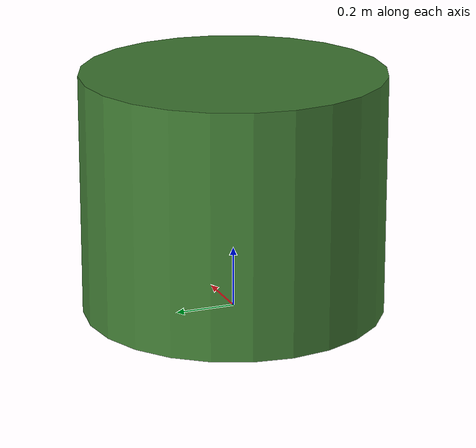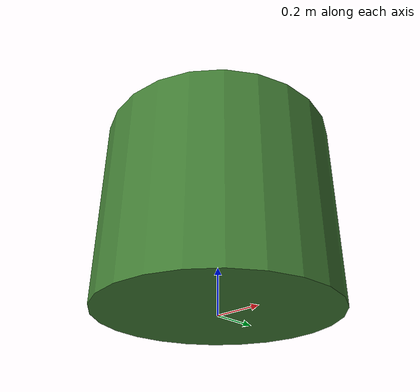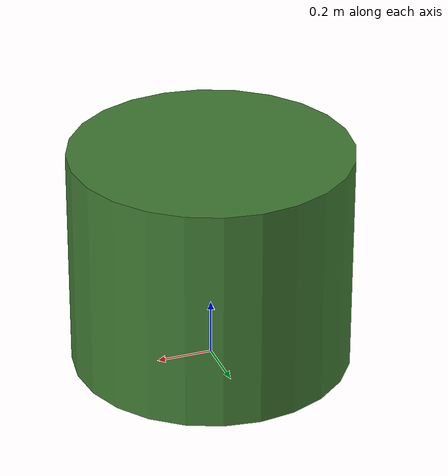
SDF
<?xml version="1.0" ?>
<sdf version="1.9">
  <model name="veg_shrub">
    <static>true</static>
    <link name="link">
      <visual name="body">
        <geometry><cylinder><radius>0.5</radius><length>0.8</length></cylinder></geometry>
        <pose>0 0 0.4 0 0 0</pose>
        <material>
          <ambient>0.2 0.38 0.15 1</ambient>
          <diffuse>0.25 0.48 0.2 1</diffuse>
        </material>
      </visual>
    </link>
  </model>
</sdf>
